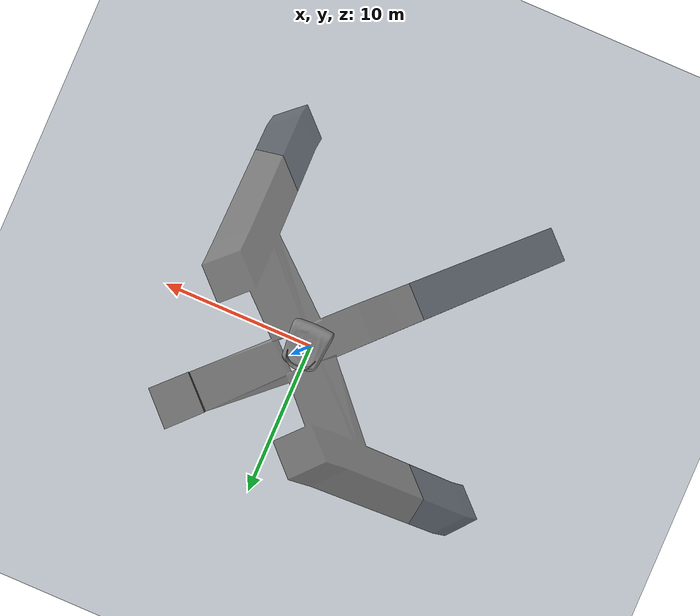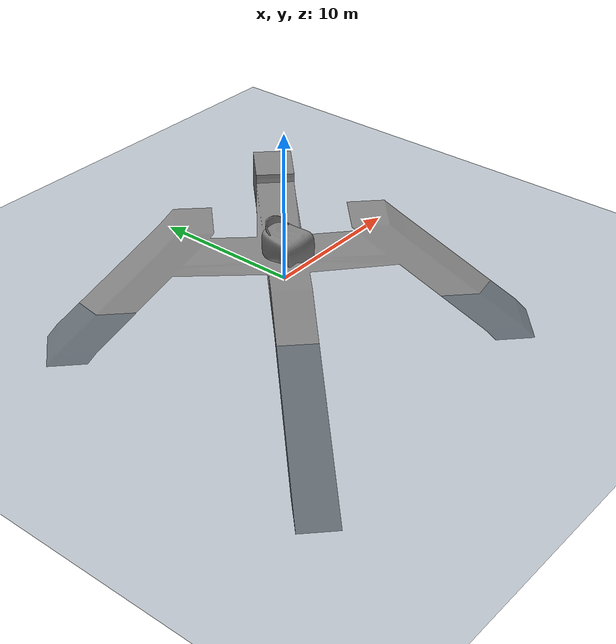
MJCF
<mujoco>
    <compiler meshdir="assets" texturedir="assets" angle="radian" />
    <include file="models/cadeira.xml" />
    <visual>
        <headlight diffuse="0.6 0.6 0.6" ambient="0.3 0.3 0.3" specular="0 0 0" />
        <rgba haze="0.15 0.25 0.35 1" />
        <global azimuth="220" elevation="-10" />
        <quality shadowsize="8192" />
    </visual>

    <asset>
        <texture type="skybox" builtin="gradient" rgb1="0.3 0.5 0.7" rgb2="0 0 0" width="512"
            height="3072" />
        <texture type="2d" name="groundplane" builtin="checker" mark="edge" rgb1="0.2 0.3 0.4"
            rgb2="0.1 0.2 0.3"
            markrgb="0.8 0.8 0.8" width="300" height="300" />
        <material name="groundplane" texture="groundplane" texuniform="true" texrepeat="5 5"
            reflectance="0.2" />
    </asset>
    <worldbody>
        <light pos="0 0 1.5" dir="0 0 -1" directional="true" />
        <geom name="floor" size="0 0 0.05" type="plane" material="groundplane" />
    </worldbody>
</mujoco>

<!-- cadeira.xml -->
<mujocoinclude>
    <worldbody>
        <body name="Cube_003" pos="0.040425557643175125 -0.040494322776794434 2.270876169204712"
            quat="1.0 0.0 0.0 0.0">
            <geom type="mesh" name="Cube_003 geom" mesh="Cube_003" />
        </body>
        <body name="Cube.002" pos="0.042375802993774414 -0.035219043493270874 1.3277878761291504"
            quat="0.9139546751976013 0.04698885977268219 -0.11344115436077118 0.38679441809654236">
            <geom type="mesh" name="Cube_002 geom" mesh="Cube_002" />
        </body>
        <body name="Cube" pos="0.040425557643175125 -0.0009294017218053341 2.932614803314209"
            quat="1.0 0.0 0.0 0.0">
            <geom type="mesh" name="Cube geom" mesh="Cube" />
        </body>
    </worldbody>
    <asset>
        <mesh name="Cube_003" file="cadeira/Cube_003.stl" />
        <mesh name="Cube_002" file="cadeira/Cube_002.stl" />
        <mesh name="Cube" file="cadeira/Cube.stl" />
    </asset>
</mujocoinclude>
